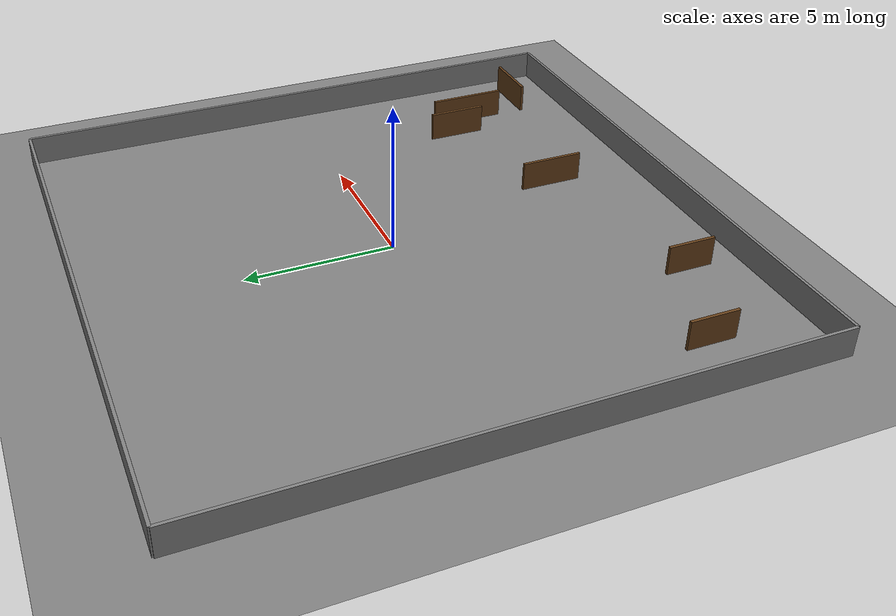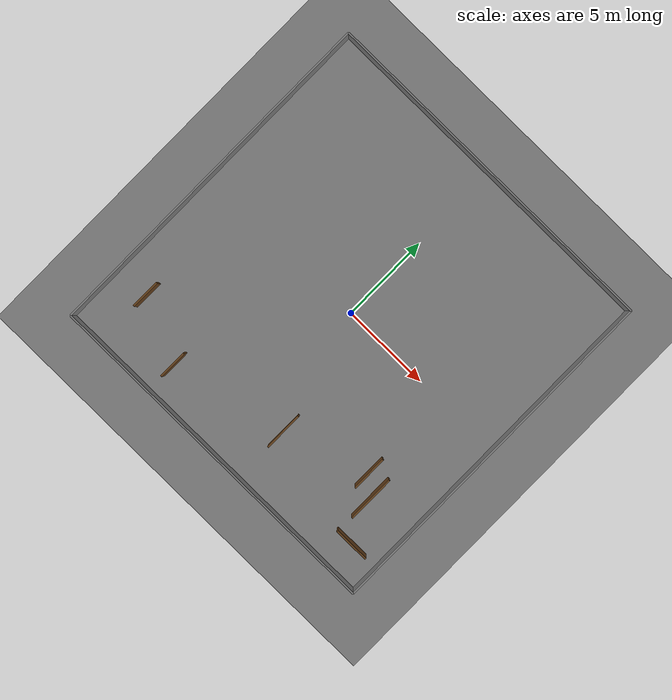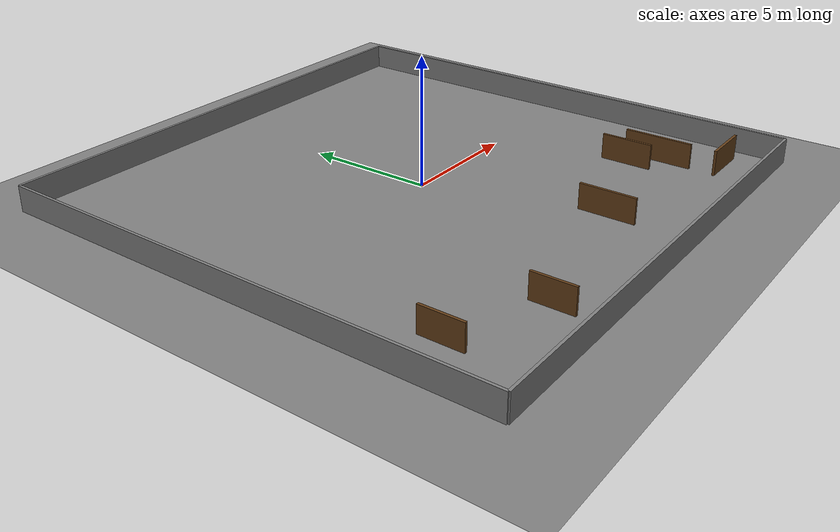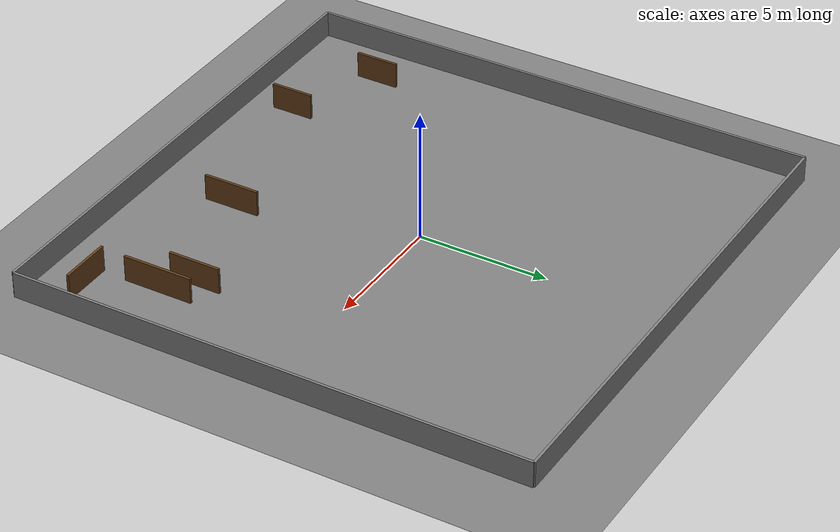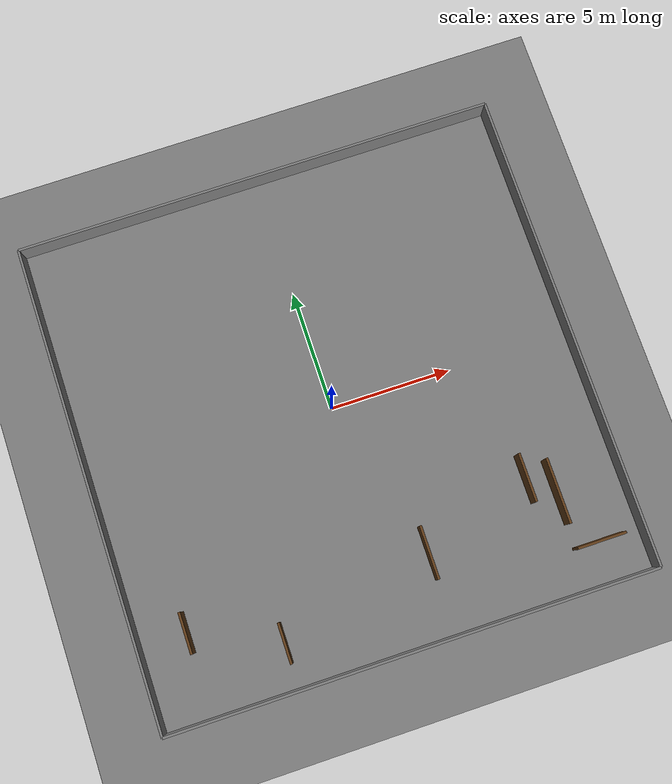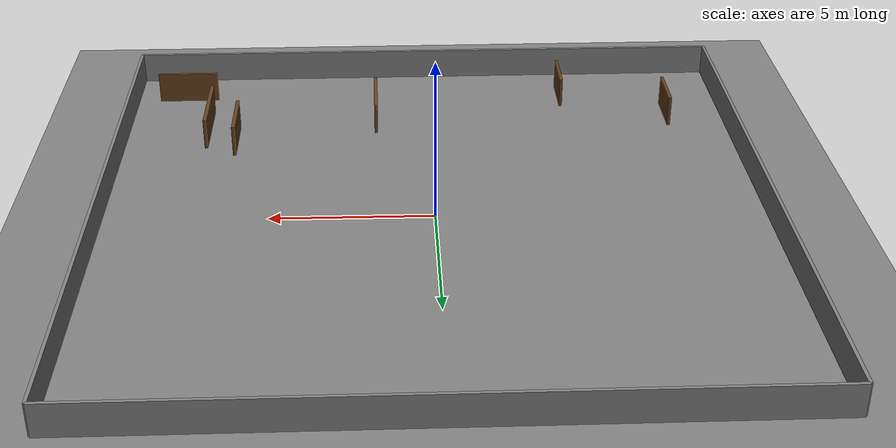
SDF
<?xml version="1.0" ?>
<sdf version="1.8">
  <world name="maze_generated">

    <!-- Physics -->
    <physics name="1ms" type="ignored">
      <max_step_size>0.001</max_step_size>
      <real_time_factor>1.0</real_time_factor>
    </physics>

    <!-- Plugins -->
    <plugin filename="gz-sim-physics-system" name="gz::sim::systems::Physics"/>
    <plugin filename="gz-sim-user-commands-system" name="gz::sim::systems::UserCommands"/>
    <plugin filename="gz-sim-scene-broadcaster-system" name="gz::sim::systems::SceneBroadcaster"/>
    <plugin filename="gz-sim-sensors-system" name="gz::sim::systems::Sensors">
      <render_engine>ogre2</render_engine>
    </plugin>
    <plugin filename="gz-sim-imu-system" name="gz::sim::systems::Imu"/>
    <plugin filename="gz-sim-contact-system" name="gz::sim::systems::Contact"/>

    <!-- Lighting -->
    <light type="directional" name="sun">
      <cast_shadows>true</cast_shadows>
      <pose>0 0 10 0 0 0</pose>
      <diffuse>0.8 0.8 0.8 1</diffuse>
      <specular>0.2 0.2 0.2 1</specular>
      <direction>-0.5 0.1 -0.9</direction>
    </light>

    <!-- Ground Plane -->
    <model name="ground_plane">
      <static>true</static>
      <link name="link">
        <collision name="collision">
          <geometry>
            <plane>
              <normal>0 0 1</normal>
              <size>100 100</size>
            </plane>
          </geometry>
        </collision>
        <visual name="visual">
          <geometry>
            <plane>
              <normal>0 0 1</normal>
              <size>100 100</size>
            </plane>
          </geometry>
          <material>
            <ambient>0.5 0.5 0.5 1.0</ambient>
            <diffuse>0.5 0.5 0.5 1.0</diffuse>
          </material>
        </visual>
      </link>
    </model>

    <model name="wall_north">
      <static>true</static>
      <pose>0 10.0 0.5 0.0 0.0 0.0</pose>
      <link name="link">
        <collision name="collision">
          <geometry><box><size>20.0 0.1 1.0</size></box></geometry>
        </collision>
        <visual name="visual">
          <geometry><box><size>20.0 0.1 1.0</size></box></geometry>
          <material>
            <ambient>0.5 0.5 0.5 1.0</ambient>
            <diffuse>0.5 0.5 0.5 1.0</diffuse>
          </material>
        </visual>
      </link>
    </model>

    <model name="wall_south">
      <static>true</static>
      <pose>0 -10.0 0.5 0.0 0.0 0.0</pose>
      <link name="link">
        <collision name="collision">
          <geometry><box><size>20.0 0.1 1.0</size></box></geometry>
        </collision>
        <visual name="visual">
          <geometry><box><size>20.0 0.1 1.0</size></box></geometry>
          <material>
            <ambient>0.5 0.5 0.5 1.0</ambient>
            <diffuse>0.5 0.5 0.5 1.0</diffuse>
          </material>
        </visual>
      </link>
    </model>

    <model name="wall_east">
      <static>true</static>
      <pose>10.0 0 0.5 0.0 0.0 0.0</pose>
      <link name="link">
        <collision name="collision">
          <geometry><box><size>0.1 20.0 1.0</size></box></geometry>
        </collision>
        <visual name="visual">
          <geometry><box><size>0.1 20.0 1.0</size></box></geometry>
          <material>
            <ambient>0.5 0.5 0.5 1.0</ambient>
            <diffuse>0.5 0.5 0.5 1.0</diffuse>
          </material>
        </visual>
      </link>
    </model>

    <model name="wall_west">
      <static>true</static>
      <pose>-10.0 0 0.5 0.0 0.0 0.0</pose>
      <link name="link">
        <collision name="collision">
          <geometry><box><size>0.1 20.0 1.0</size></box></geometry>
        </collision>
        <visual name="visual">
          <geometry><box><size>0.1 20.0 1.0</size></box></geometry>
          <material>
            <ambient>0.5 0.5 0.5 1.0</ambient>
            <diffuse>0.5 0.5 0.5 1.0</diffuse>
          </material>
        </visual>
      </link>
    </model>

    <model name="inner_wall_1">
      <static>true</static>
      <pose>-8.057455220683002 -6.599864628388789 0.5 0.0 0.0 1.5707963267948966</pose>
      <link name="link">
        <collision name="collision">
          <geometry><box><size>1.6615503524076587 0.1 1.0</size></box></geometry>
        </collision>
        <visual name="visual">
          <geometry><box><size>1.6615503524076587 0.1 1.0</size></box></geometry>
          <material>
            <ambient>0.4 0.25 0.1 1.0</ambient>
            <diffuse>0.4 0.25 0.1 1.0</diffuse>
          </material>
        </visual>
      </link>
    </model>

    <model name="inner_wall_2">
      <static>true</static>
      <pose>8.220728077012762 -8.313234010158197 0.5 0.0 0.0 0.0</pose>
      <link name="link">
        <collision name="collision">
          <geometry><box><size>1.9982965477645198 0.1 1.0</size></box></geometry>
        </collision>
        <visual name="visual">
          <geometry><box><size>1.9982965477645198 0.1 1.0</size></box></geometry>
          <material>
            <ambient>0.4 0.25 0.1 1.0</ambient>
            <diffuse>0.4 0.25 0.1 1.0</diffuse>
          </material>
        </visual>
      </link>
    </model>

    <model name="inner_wall_3">
      <static>true</static>
      <pose>6.3375591407286365 -5.1257295630328255 0.5 0.0 0.0 1.5707963267948966</pose>
      <link name="link">
        <collision name="collision">
          <geometry><box><size>2.000694591943433 0.1 1.0</size></box></geometry>
        </collision>
        <visual name="visual">
          <geometry><box><size>2.000694591943433 0.1 1.0</size></box></geometry>
          <material>
            <ambient>0.4 0.25 0.1 1.0</ambient>
            <diffuse>0.4 0.25 0.1 1.0</diffuse>
          </material>
        </visual>
      </link>
    </model>

    <model name="inner_wall_4">
      <static>true</static>
      <pose>-4.587059654682999 -8.15421991076117 0.5 0.0 0.0 1.5707963267948966</pose>
      <link name="link">
        <collision name="collision">
          <geometry><box><size>1.6314202496256343 0.1 1.0</size></box></geometry>
        </collision>
        <visual name="visual">
          <geometry><box><size>1.6314202496256343 0.1 1.0</size></box></geometry>
          <material>
            <ambient>0.4 0.25 0.1 1.0</ambient>
            <diffuse>0.4 0.25 0.1 1.0</diffuse>
          </material>
        </visual>
      </link>
    </model>

    <model name="inner_wall_5">
      <static>true</static>
      <pose>1.7567903607838282 -6.655973412504508 0.5 0.0 0.0 1.5707963267948966</pose>
      <link name="link">
        <collision name="collision">
          <geometry><box><size>2.1724825624604156 0.1 1.0</size></box></geometry>
        </collision>
        <visual name="visual">
          <geometry><box><size>2.1724825624604156 0.1 1.0</size></box></geometry>
          <material>
            <ambient>0.4 0.25 0.1 1.0</ambient>
            <diffuse>0.4 0.25 0.1 1.0</diffuse>
          </material>
        </visual>
      </link>
    </model>

    <model name="inner_wall_6">
      <static>true</static>
      <pose>7.297175741120981 -5.987684011917987 0.5 0.0 0.0 1.5707963267948966</pose>
      <link name="link">
        <collision name="collision">
          <geometry><box><size>2.685107766538202 0.1 1.0</size></box></geometry>
        </collision>
        <visual name="visual">
          <geometry><box><size>2.685107766538202 0.1 1.0</size></box></geometry>
          <material>
            <ambient>0.4 0.25 0.1 1.0</ambient>
            <diffuse>0.4 0.25 0.1 1.0</diffuse>
          </material>
        </visual>
      </link>
    </model>

  </world>
</sdf>
